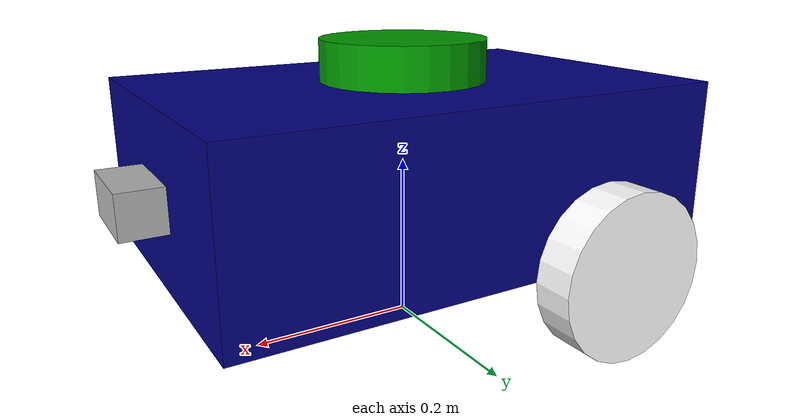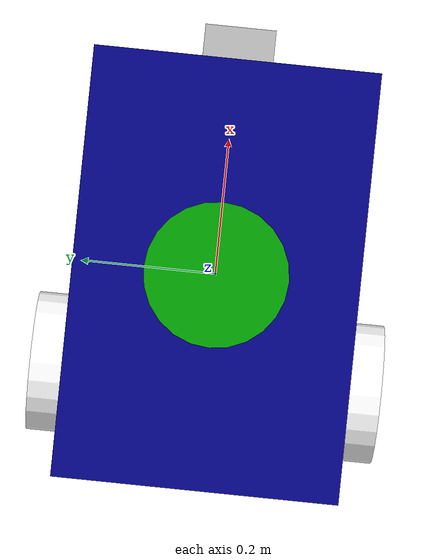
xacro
<?xml version= "1.0"?>
<robot name="my_robot" xmlns:xacro="http://www.ros.org/wiki/xacro">
    <!--by adding above url we can add direct variable-->
    <!--Ex.  ${pi/2} instead of 1.57-->

    <!--THIS IS MAIN FILE WHICH CONTAIN TWO XACRO FILE-->
    <!--TO SHORTEN THE CODE WE INCLUDE FILE IN THIS MAIN FILE-->

    <xacro:include filename="common_properties.xacro" />
    <xacro:include filename="mobile_base.xacro" />

    <xacro:include filename="mobile_base_gazebo.xacro" />
    <xacro:include filename="ros2_control.xacro" />

    <!--rbotic arm -->

    <xacro:include filename="camera.xacro" />
    <xacro:include filename="lidar.xacro"/>

    <!-- connecting joints between main robot and robotic arm-->
</robot>

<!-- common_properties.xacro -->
<robot xmlns:xacro="http://www.ros.org/wiki/xacro">

   <!--THIS XACRO FILE CONTAINS COMMON PROPERTIES-->

   <!--add colour-->
    <material name ="grey">
        <color rgba="0.7 0.7 0.7 1" />
    </material>

    <material name ="green">
        <color rgba="0 0.6 0 1" />
    </material>

    <material name="white">
        <color rgba="1 1 1 1" />
    </material>

    <material name="blue">
        <color rgba="0 0 0.5 1" />
    </material>

    <material name="yellow">
        <color rgba="1 1 0 1" />
    </material>

    <material name="orange">
        <color rgba="1 0.5 0.0 1" />
    </material>

    <!--for MOI of perticular shape == serach list of moment of inertia(wiki)-->

    <!--macro for box inertia which is same for all boxes-->
    <xacro:macro name="box_inertia" params="m x y z o_xyz o_rpy">
        <inertial>
            <mass value="${m}" />
            <origin xyz="${o_xyz}" rpy="${o_rpy}" />
            <!--formula for MOI == x = (mass/12)*(y*y + z*z)-->
            <inertia ixx="${(m/12) * (y*y + z*z)}" ixy="0.0" ixz="0.0"
                     iyy="${(m/12) * (x*x + z*z)}" iyz="0.0"
                     izz="${(m/12) * (x*x + y*y)}" />
        </inertial>
    </xacro:macro>

    <!--macro for cylinder-->
    <xacro:macro name="cylinder_inertia" params="m r h o_xyz o_rpy">
        <inertial>
            <mass value="${m}" />
            <origin xyz="${o_xyz}" rpy="${o_rpy}" />
            <inertia ixx="${(m/12) * (3*r*r + h*h)}" ixy="0" ixz="0"
                     iyy="${(m/12) * (3*r*r + h*h)}" iyz="0"
                     izz="${(m*r*r)/2}" />
        </inertial>
    </xacro:macro>

    <!--macro for sphere-->
    <xacro:macro name="sphere_inertia" params="m r o_xyz o_rpy">
        <inertial>
            <mass value="${m}" />
            <origin xyz="${o_xyz}" rpy="${o_rpy}" />
            <inertia ixx="${(2*m*r*r)/5}" ixy="0" ixz="0"
                     iyy="${(2*m*r*r)/5}" iyz="0"
                     izz="${(2*m*r*r)/5}" />
        </inertial>
    </xacro:macro>

</robot>

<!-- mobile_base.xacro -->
<robot xmlns:xacro="http://www.ros.org/wiki/xacro">

    <!--THIS FILE CONTAINS ALL LINKS AND JOINTS-->

    <!--creating own constant variable or properties-->
    <xacro:property name="base_length"  value="0.6" />
    <xacro:property name="base_width" value="0.4" />
    <xacro:property name="base_height" value="0.2" />
     <xacro:property name="wheel_radius" value="0.1" />
    <xacro:property name="wheel_length" value="0.05" />

    <link name="base_footprint" />

    <joint name ="base_joint" type="fixed">
        <parent link="base_footprint" />
        <child link="base_link" />
        <origin xyz="0 0 ${wheel_radius}" rpy="0 0 0" />
    </joint>

    <link name ="base_link">
        <visual>
            <geometry>
                <box size="${base_length} ${base_width} ${base_height}" />  <!-- creating box & all values are in meter-->
            </geometry>
            <origin xyz="0 0 ${base_height/2.0}" rpy="0 0 0" /> <!--origin of the box-->
            <material name="blue" />
        </visual>
        <collision>
        <!--same as above because the box is not in contact with ground-->
            <geometry>
                <box size="${base_length} ${base_width} ${base_height}" />  <!-- creating box & all values are in meter-->
            </geometry>
            <origin xyz="0 0 ${base_height/2.0}" rpy="0 0 0" />
        </collision>

        <!--here we have created xacro because it would be same for all box-->
        <!--so no need to write whole code each time-->
        <xacro:box_inertia m="5.0" x="${base_length}" y="${base_width}" z="${base_height}"
                           o_xyz="0 0 ${base_height/2.0}" o_rpy="0 0 0" />
    </link>

    <!--another link-->
    <link name="lidar_link">
        <visual>
            <geometry>
                <cylinder radius="0.1" length="0.05" />
            </geometry>
            <origin xyz="0 0 0" rpy="0 0 0" />
            <material name="green" />
        </visual>
        <collision>
            <geometry>
                <sphere radius="${wheel_radius}" />
            </geometry>
            <origin xyz="0 0 0" rpy="0 0 0" />
        </collision>
        <xacro:cylinder_inertia m="1.0" r="${wheel_radius}" h="${wheel_length}"
                                o_xyz="0 0 0" o_rpy="0 0 0" />
    </link>

    <!--functions in urdf <== xacro:macro-->
    <xacro:macro name="wheel_link" params="prefix">
        <link name="${prefix}_wheel">
            <visual>
                <geometry>
                    <cylinder radius="${wheel_radius}" length="${wheel_length}" />
                </geometry>
                <origin xyz="0 0 0" rpy="${pi / 2.0} 0 0" />   <!--we want to move wheel 90 deg(1.57 rad) across x-axis-->
                <material name="white" />
            </visual>
            <collision>
                <geometry>
                    <!--it is easier to define a cylinder as sphere since it is connected to ground-->
                    <!--thus there is only one point of contact with sphere instead of line (cylinder)-->
                    <sphere radius="${wheel_radius}" />
                </geometry>
                <origin xyz="0 0 0" rpy="0 0 0" />
            </collision>
            <xacro:cylinder_inertia m="1.0" r="${wheel_radius}" h="${wheel_length}"
                                 o_xyz="0 0 0" o_rpy="${pi / 2.0} 0 0" />
        </link>
    </xacro:macro>

    <!--calling the function <== xacro:macro-->
    <xacro:wheel_link prefix="left" />
    <xacro:wheel_link prefix="right" />

    <link name="castor_wheel">
        <visual>
            <geometry>
                <sphere radius="${wheel_radius/2.0}" />
            </geometry>
            <origin xyz="0 0 0" rpy="0 0 0" />
            <material name="green" />
        </visual>
        <collision>
        <!--since it is already sphere no need to change-->
            <geometry>
                <sphere radius="${wheel_radius/2.0}" />
            </geometry>
            <origin xyz="0 0 0" rpy="0 0 0" />
        </collision>
        <xacro:sphere_inertia m="0.5" r="${wheel_radius/2.0}"
                              o_xyz="0 0 0" o_rpy="0 0 0" />
    </link>

    <!--link relationship ==> joint-->

    <joint name="base_lidar_joint" type="fixed">
        <parent link="base_link" />
        <child link="lidar_link" />
        <origin xyz="0 0 ${base_height + (wheel_length/ 2.0)}" rpy="0 0 0" />
    </joint>

    <joint name="base_left_wheel_joint" type="continuous">
        <parent link="base_link" />
        <child link="left_wheel" />
        <origin xyz="${-base_length / 4.0} ${base_width/2 + wheel_length/2} 0" rpy="0 0 0" />
        <axis xyz="0 1 0" />  <!--rotation around y axis-->
    </joint>

    <joint name="base_right_wheel_joint" type="continuous">
        <parent link="base_link" />
        <child link="right_wheel" />
        <origin xyz="${-base_length / 4.0} ${-(base_width/2 + wheel_length/2)} 0" rpy="0 0 0" />
        <axis xyz="0 1 0" />
    </joint>

    <joint name="base_castor_wheel_joint" type="fixed">
        <parent link="base_link" />
        <child link="castor_wheel" />
        <origin xyz="${base_length / 3.0} 0 ${-wheel_radius/2.0}" rpy="0 0 0" />
        <axis xyz="0 0 0" />
    </joint>

</robot>

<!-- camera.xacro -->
<robot xmlns:xacro="http://www.ros.org/wiki/xacro">

        <xacro:property name="camera_length" value="0.05" />
        <xacro:property name="camera_width" value="0.1" />
        <xacro:property name="camera_height" value="0.05" />

        <link name="camera_link">
            <visual>
                <geometry>
                    <box size="${camera_length} ${camera_width} ${camera_height}" />
                </geometry>
                <material name="grey" />
            </visual>
            <collision>
                <geometry>
                    <box size="${camera_length} ${camera_width} ${camera_height}" />
                </geometry>
            </collision>
            <xacro:box_inertia m="0.1" x="${camera_length}" y="${camera_width}" z="${camera_height}"
                               o_xyz="0 0 0" o_rpy="0 0 0" />
        </link>

        <joint name="base_camera_joint" type="fixed" >
            <parent link="base_link" />
            <child link="camera_link" />
            <origin xyz="${(base_length / 2.0 + camera_length / 2.0) } 0 ${base_height / 2.0}" rpy="0 0 0" />
        </joint>

        <!--sensor plugin-->
        <gazebo reference="camera_link">
            <sensor name="camera" type="camera">
                <camera>
                    <horizontal_fov>1.3962634</horizontal_fov>
                    <image>
                    <!--resolution of image-->
                        <width>640</width>
                        <height>480</height>
                        <format>R8G8B8</format>
                    </image>
                    <clip>
                        <near>0.1</near>
                        <far>15</far>
                    </clip>
                    <noise>
                        <type>gaussian</type>
                        <mean>0.0</mean>
                        <stddev>0.007</stddev>
                    </noise>
                    <optical_frame_id>camera_link</optical_frame_id>  <!--same as sensor link-->
                    <camera_info_topic>camera/camera_info</camera_info_topic> <!--gz topic-->
                </camera>
                <always_on>1</always_on>
                <update_rate>20</update_rate>  <!--20 hz referece rate-->
                <visualize>true</visualize>
                <topic>camera/image_raw</topic>  <!--gz topic-->
            </sensor>

            <plugin name="camera_controller" filename="libgazebo_ros_camera.so">
                <camera_name>camera</camera_name>
                <image_topic_name>image_raw</image_topic_name>
                <camera_info_topic_name>camera_info</camera_info_topic_name>
                <frame_name>camera_link</frame_name>
                <update_rate>20.0</update_rate>
            </plugin>

        </gazebo>
</robot>
